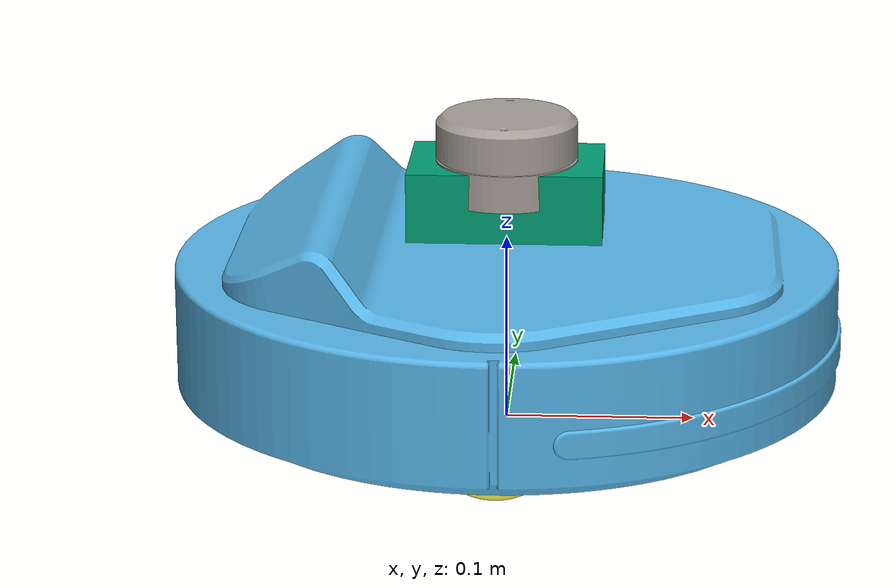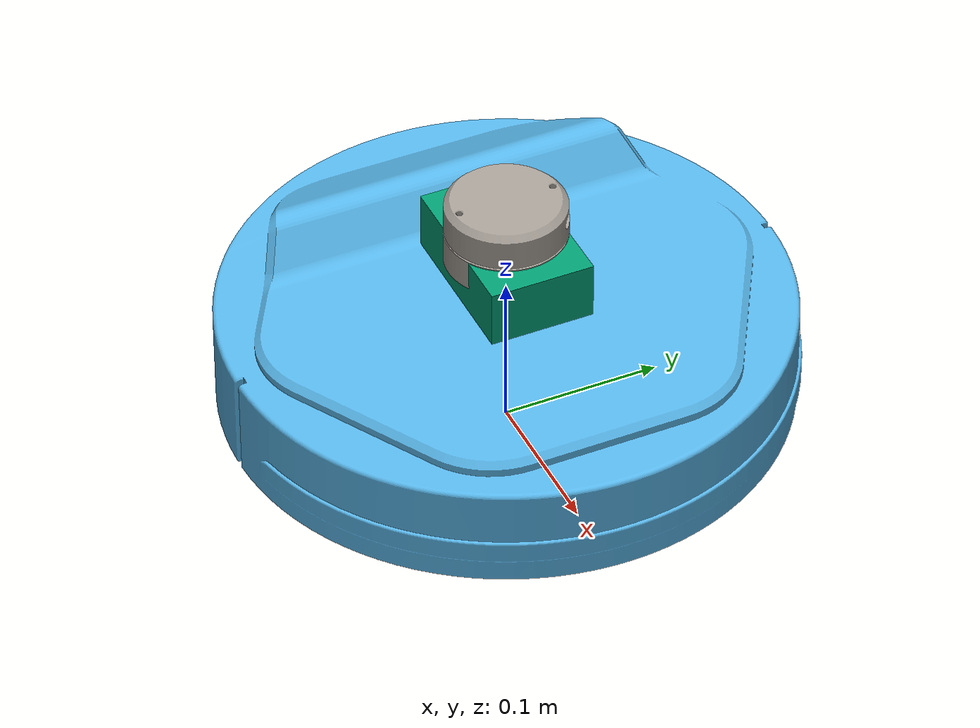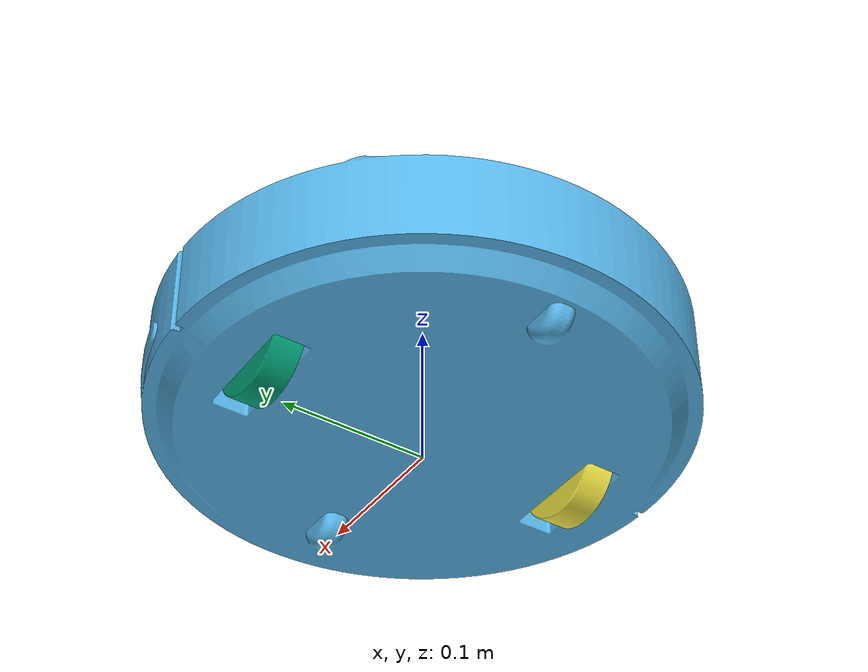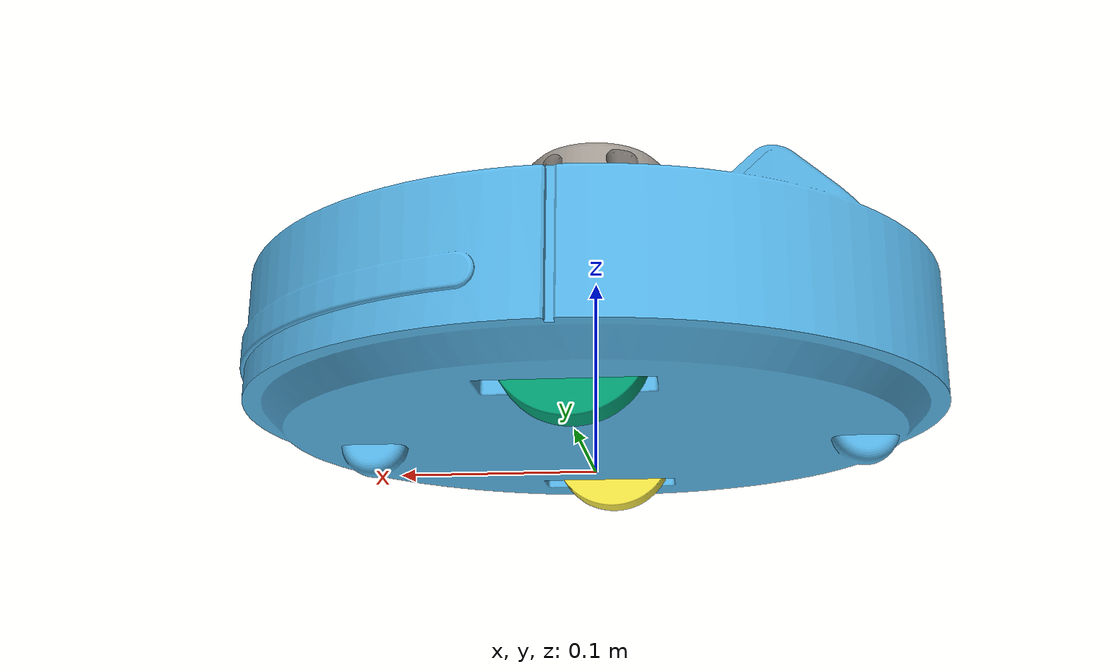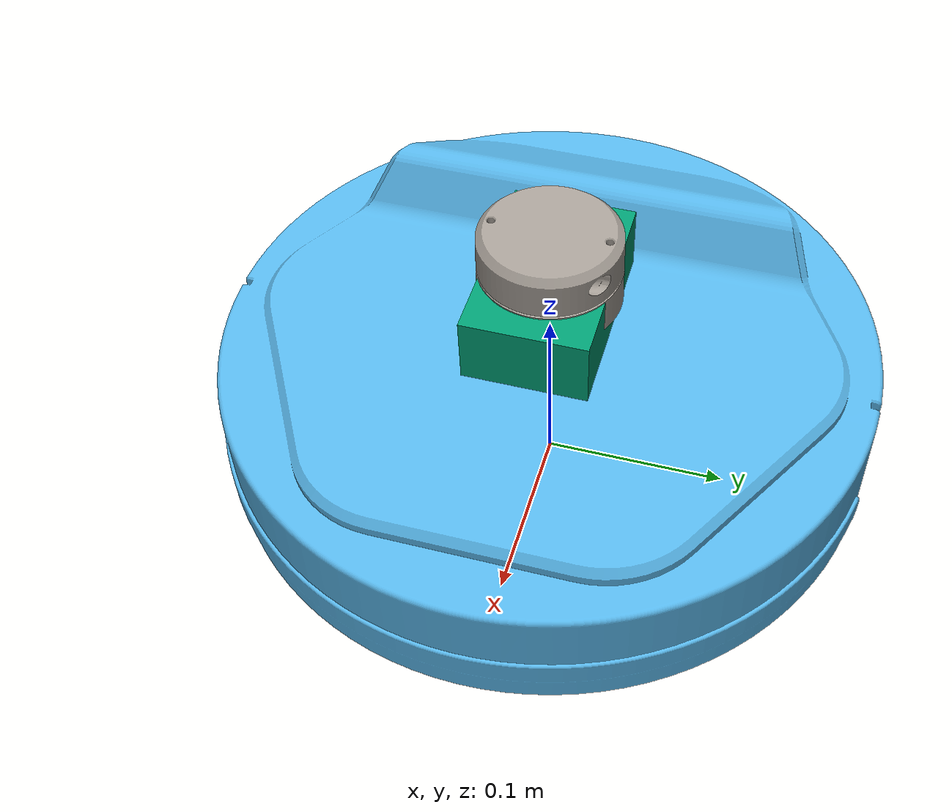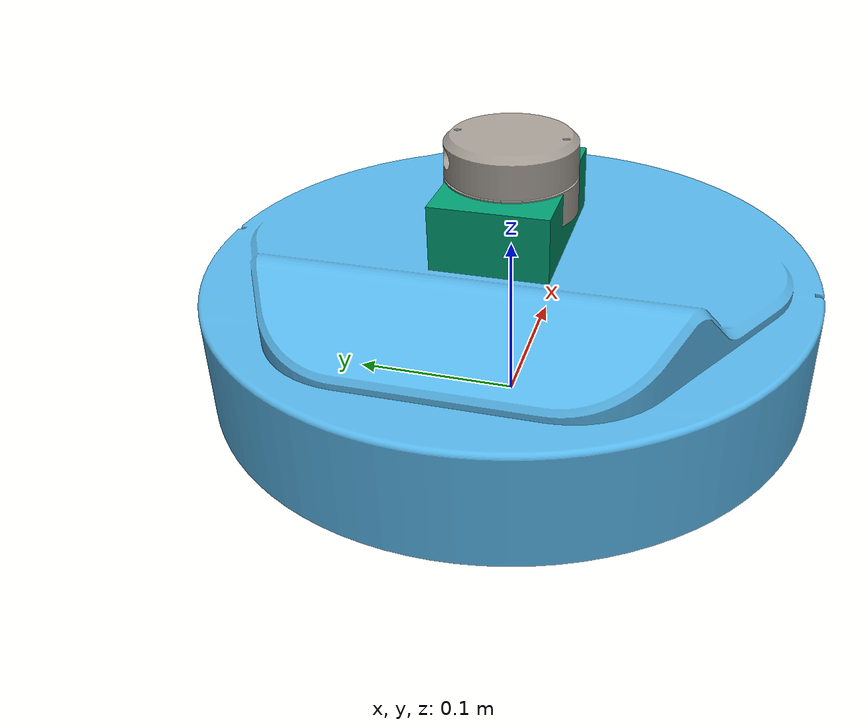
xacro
<?xml version="1.0"?>
<robot name="kobuki_yd" xmlns:xacro="http://ros.org/wiki/xacro">
  <xacro:arg name = "imuNoise" default = "0.00000196"/>
  <xacro:arg name = "lidarNoise" default = "0.0014"/>

  <xacro:include filename="$(find kobuki_description)/urdf/kobuki.urdf.xacro" />
  <xacro:include filename="$(find kobuki_yd)/urdf/ydlidar.urdf.xacro" />

  <xacro:kobuki imu_noise = "$(arg imuNoise)"/>

  <ydlidar_model parent="lidar_bottom" lidar_noise = "$(arg lidarNoise)">
	<origin xyz="0 0 0" rpy="0 0 0" />
  </ydlidar_model>

</robot>

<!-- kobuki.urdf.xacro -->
<robot name="kobuki" xmlns:xacro="http://ros.org/wiki/xacro">
  <xacro:include filename="$(find kobuki_description)/urdf/common_properties.urdf.xacro"/>
  <xacro:include filename="$(find kobuki_description)/urdf/kobuki_gazebo.urdf.xacro"/>

  <!-- Kobuki -->
  <xacro:macro name="kobuki" params="imu_noise">
    <link name="base_footprint"/>
    <joint name="base_joint" type="fixed">
      <origin xyz="0 0 0.0102" rpy="0 0 0" />
      <parent link="base_footprint"/>
      <child link="base_link" />
    </joint>
    <link name="base_link">
      <visual>
        <geometry>
          <!-- new mesh -->
          <mesh filename="package://kobuki_description/meshes/main_body.dae" />
        </geometry>
        <origin xyz="0.001 0 0.05199" rpy="0 0 0"/>
      </visual>
      <collision name="base">
        <geometry>
          <cylinder length="0.10938" radius="0.178"/>
        </geometry>
        <origin xyz="0.0 0 0.05949" rpy="0 0 0"/>
      </collision>
      <inertial>
        <!-- COM experimentally determined -->
        <origin xyz="0.01 0 0"/>
        <mass value="2.4"/> <!-- 2.4/2.6 kg for small/big battery pack -->
        <inertia ixx="0.019995" ixy="0.0" ixz="0.0"
                 iyy="0.019995" iyz="0.0"
                 izz="0.03675" />
      </inertial>
    </link>

    <joint name="wheel_left_joint" type="continuous">
      <parent link="base_link"/>
      <child link="wheel_left_link"/>
      <origin xyz="0.00 ${0.23/2} 0.0250" rpy="${-M_PI/2} 0 0"/>
      <axis xyz="0 0 1"/>
    </joint>
    <link name="wheel_left_link">
      <visual>
        <geometry>
          <mesh filename="package://kobuki_description/meshes/wheel.dae"/>
        </geometry>
        <origin xyz="0 0 0" rpy="0 0 0"/>
      </visual>
      <collision>
        <geometry>
          <cylinder length="0.0206" radius="0.0352"/>
        </geometry>
        <origin rpy="0 0 0" xyz="0 0 0"/>
      </collision>
      <inertial>
        <mass value="0.01" />
        <origin xyz="0 0 0" />
        <inertia ixx="0.001" ixy="0.0" ixz="0.0"
                 iyy="0.001" iyz="0.0"
                 izz="0.001" />
      </inertial>
    </link>

    <joint name="wheel_right_joint" type="continuous">
      <parent link="base_link"/>
      <child link="wheel_right_link"/>
      <origin xyz="0.00 -${0.23/2} 0.0250" rpy="${-M_PI/2} 0 0"/>
      <axis xyz="0 0 1"/>
    </joint>
    <link name="wheel_right_link">
      <visual>
        <geometry>
          <mesh filename="package://kobuki_description/meshes/wheel.dae"/>
        </geometry>
        <origin xyz="0 0 0" rpy="0 0 0"/>
      </visual>
      <collision>
        <geometry>
          <cylinder length="0.0206" radius="0.0350"/>
        </geometry>
        <origin rpy="0 0 0" xyz="0 0 0"/>
      </collision>
      <inertial>
        <mass value="0.01" />
        <origin xyz="0 0 0" />
        <inertia ixx="0.001" ixy="0.0" ixz="0.0"
                 iyy="0.001" iyz="0.0"
                 izz="0.001" />
      </inertial>
    </link>

    <joint name="caster_front_joint" type="fixed">
      <parent link="base_link"/>
      <child link="caster_front_link"/>
      <origin xyz="0.115 0.0 0.007" rpy="${-M_PI/2} 0 0"/>
    </joint>
    <link name="caster_front_link">
      <collision>
        <geometry>
          <cylinder length="0.0176" radius="0.017"/>
        </geometry>
        <origin rpy="0 0 0" xyz="0 0 0"/>
      </collision>
      <inertial>
        <mass value="0.01" />
        <origin xyz="0 0 0" />
        <inertia ixx="0.001" ixy="0.0" ixz="0.0"
                 iyy="0.001" iyz="0.0"
                 izz="0.001" />
      </inertial>
    </link>

    <joint name="caster_back_joint" type="fixed">
      <parent link="base_link"/>
      <child link="caster_back_link"/>
      <origin xyz="-0.135 0.0 0.009" rpy="${-M_PI/2} 0 0"/>
    </joint>
    <link name="caster_back_link">
      <collision>
        <geometry>
          <cylinder length="0.0176" radius="0.017"/>
        </geometry>
        <origin rpy="0 0 0" xyz="0 0 0"/>
      </collision>
      <inertial>
        <mass value="0.01" />
        <origin xyz="0 0 0" />
        <inertia ixx="0.001" ixy="0.0" ixz="0.0"
                 iyy="0.001" iyz="0.0"
                 izz="0.001" />
      </inertial>
    </link>

    <!-- Kobuki's sensors -->
    <joint name="gyro_joint" type="fixed">
      <axis xyz="0 1 0"/>
      <origin xyz="0.056 0.062 0.0202" rpy="0 0 0"/>
      <parent link="base_link"/>
      <child link="gyro_link"/>
    </joint>
    <link name="gyro_link">
      <inertial>
        <mass value="0.001"/>
        <origin xyz="0 0 0" rpy="0 0 0"/>
        <inertia ixx="0.0001" ixy="0" ixz="0"
                 iyy="0.000001" iyz="0"
                 izz="0.0001"/>
      </inertial>
    </link>

    <joint name="cliff_sensor_left_joint" type="fixed">
      <origin xyz="0.08734 0.13601 0.0214" rpy="0 ${M_PI/2} 0" />
      <parent link="base_link"/>
      <child link="cliff_sensor_left_link" />
    </joint>
    <link name="cliff_sensor_left_link">
      <inertial>
        <mass value="0.0001" />
        <origin xyz="0 0 0" />
        <inertia ixx="0.0001" ixy="0.0" ixz="0.0"
                 iyy="0.0001" iyz="0.0"
                 izz="0.0001" />
      </inertial>
    </link>

    <joint name="cliff_sensor_right_joint" type="fixed">
      <origin xyz="0.085 -0.13601 0.0214" rpy="0 ${M_PI/2} 0" />
      <parent link="base_link"/>
      <child link="cliff_sensor_right_link" />
    </joint>
    <link name="cliff_sensor_right_link">
      <inertial>
        <mass value="0.0001" />
        <origin xyz="0 0 0" />
        <inertia ixx="0.0001" ixy="0.0" ixz="0.0"
                 iyy="0.0001" iyz="0.0"
                 izz="0.0001" />
      </inertial>
    </link>

    <joint name="cliff_sensor_front_joint" type="fixed">
      <origin xyz="0.156 0.00 0.0214" rpy="0 ${M_PI/2} 0" />
      <parent link="base_link"/>
      <child link="cliff_sensor_front_link" />
    </joint>
    <link name="cliff_sensor_front_link">
      <inertial>
        <mass value="0.0001" />
        <origin xyz="0 0 0" />
        <inertia ixx="0.0001" ixy="0.0" ixz="0.0"
                 iyy="0.0001" iyz="0.0"
                 izz="0.0001" />
      </inertial>
    </link>

    <link name="lidar_bottom">

        <origin xyz="0 0 0.13248" rpy="0 0 0"/>

        <inertial>
          <mass value="0.139"/>
          <inertia

            ixx="0.000065364"
            iyy="0.000135328"
            izz="0.000169652"
            ixy="0"
            ixz="0"
            iyz="0"
          />

        </inertial>

        <collision name="lidar_base_collision">
          <geometry>
            <box size="0.1017 0.0656 0.0366"/>
          </geometry>
        </collision>

        <!-- The visual is mostly a copy of the collision -->
        <visual name="lidar_base_visual">
          <geometry>
            <box size="0.1017 0.0656 0.0366"/>
          </geometry>
        </visual>
    </link>

    <joint type="fixed" name="bottom_base_lidar_joint">
	<origin xyz="0 0 0.11418" rpy = "0 0 0"/>

        <parent link="base_link"/>

        <child link="lidar_bottom"/>

     </joint>

    <kobuki_sim imu_n = "${imu_noise}"/>

  </xacro:macro>

</robot>

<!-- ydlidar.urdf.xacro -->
<robot name = "ydlidar" xmlns:xacro="http://ros.org/wiki/xacro">

  <xacro:macro name="ydlidar_model" params="parent lidar_noise *origin">
  <joint name="ydlidar_joint" type="fixed">
    <xacro:insert_block name="origin" />
    <parent link="${parent}"/>
    <child link="base_laser_link"/>
  </joint>

  <link name="base_laser_link">
    <inertial>
      <origin
        xyz="-0.00029774 0.0066667 0.00013047"
        rpy="0 0 0" />
      <mass
        value="0.15717" />
      <inertia
        ixx="6.7885E-05"
        ixy="-1.3987E-07"
        ixz="-8.1554E-07"
        iyy="0.00013173"
        iyz="-9.0932E-08"
        izz="7.1972E-05" />
    </inertial>
    <visual>
      <origin
        xyz="0 0 0"
        rpy="0 0 0" />
      <geometry>
        <mesh
          filename="package://ydlidar/meshes/ydlidar.dae" />
      </geometry>
      <material
        name="">
        <color
          rgba="0.64706 0.61961 0.58824 1" />
      </material>
    </visual>
    <collision>
      <origin
        xyz="0 0 0"
        rpy="0 0 0" />
      <geometry>
        <mesh
          filename="package://ydlidar/meshes/ydlidar.dae" />
      </geometry>
    </collision>
  </link>

  <link
    name="laser_frame_link">
    <inertial>
      <origin
        xyz="-0.00036659 0.00064155 -0.00027052"
        rpy="0 0 0" />
      <mass
        value="0.25482" />
      <inertia
        ixx="8.9194E-05"
        ixy="1.8116E-07"
        ixz="3.6435E-08"
        iyy="0.00018279"
        iyz="2.423E-07"
        izz="0.00011103" />
    </inertial>

  </link>

	  <gazebo reference="laser_frame_link">
	    <mu1>0.3</mu1>
            <mu2>0.3</mu2>
	    <sensor type="ray" name="lidar">
	      <always_on>true</always_on>
              <visualize>false</visualize>
              <update_rate>9</update_rate>
              <ray>
                <scan>
                  <!-- The horizontal beams -->
                  <horizontal>
                    <!-- The ydlidar has n beams(samples) -->
                    <samples>720</samples>
           	    <resolution>1</resolution>
           	    <min_angle>0</min_angle>
            	    <max_angle>6.2831853</max_angle>
           	  </horizontal>
          	</scan>
              <!-- Range defines characteristics of an individual beam -->
              <range>
                <!-- Minimum distance of the beam -->
                <min>0.12</min>
                <!-- Maximum distance of the beam -->
                <max>10</max>
                <!-- Linear resolution of the beam -->
                <resolution>0.5</resolution>
              </range>
              <noise>
                <type>gaussian</type>
                <mean>0.0</mean>
                <stddev>${lidar_noise}</stddev>
              </noise>
            </ray>
            <plugin name="gazebo_ros_ydlidar_controller" filename="libgazebo_ros_laser.so">
              <topicName>/ydlidar/laser/scan</topicName>
              <frameName>laser_frame_link</frameName>
            </plugin>

          </sensor>
	</gazebo>

  <joint
    name="laser_joint"
    type="fixed">
    <origin
      xyz="0 0 0.03172"
      rpy="0 0 0" />
    <parent
      link="base_laser_link" />
    <child
      link="laser_frame_link" />
    <axis
      xyz="0 0 0" />
  </joint>

  <gazebo reference="base_laser_link">
    <mu1>0.3</mu1>
    <mu2>0.3</mu2>
  </gazebo>

  </xacro:macro>
</robot>
